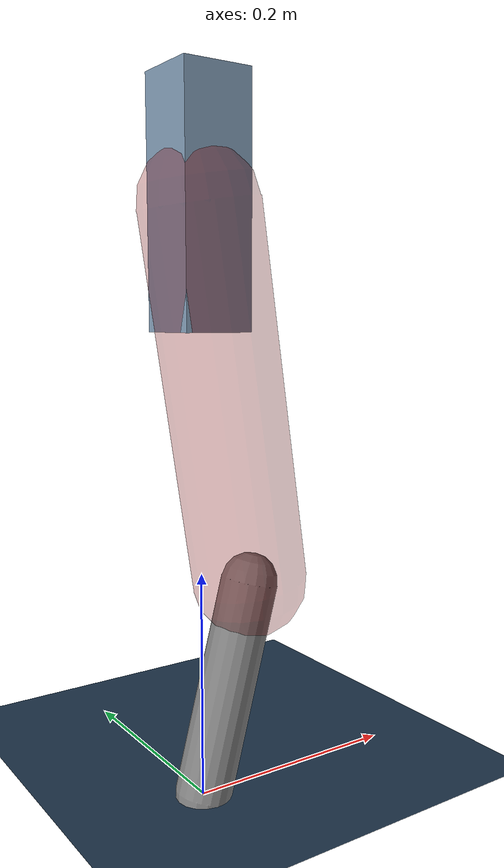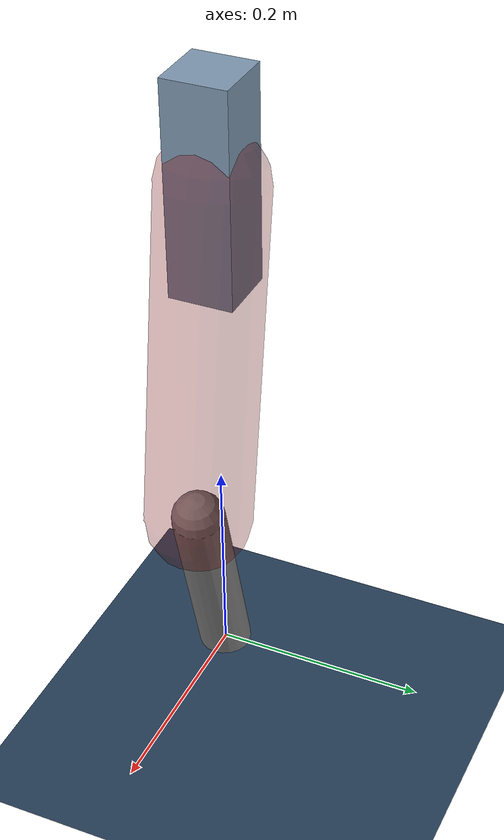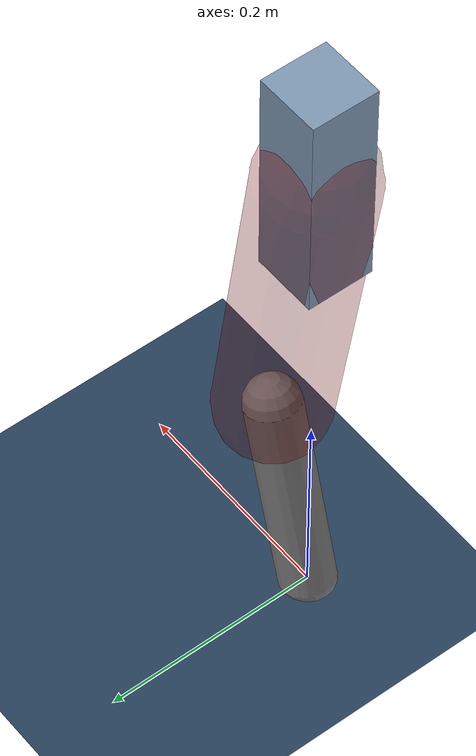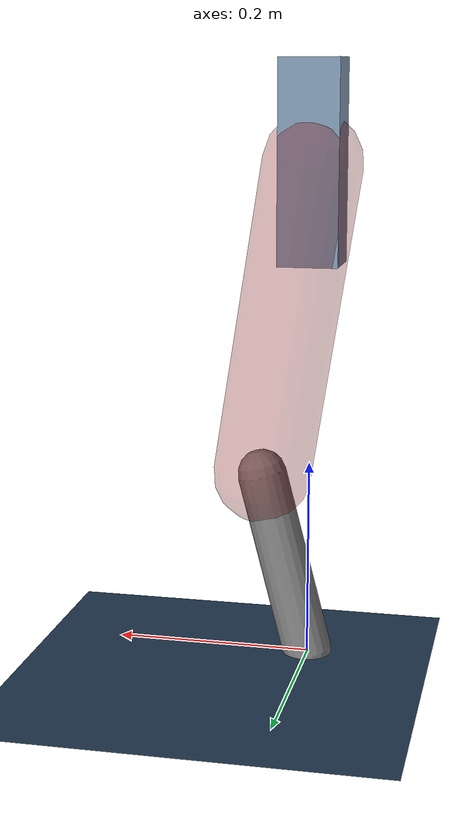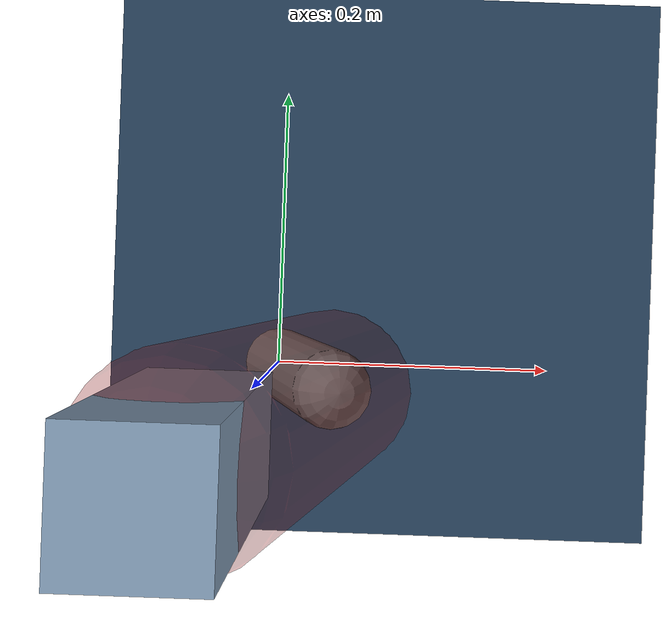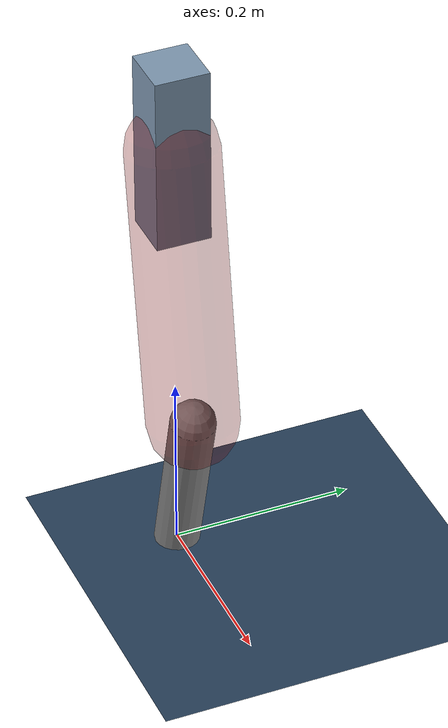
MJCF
<mujoco model="Hopper2D">
	<compiler inertiafromgeom="true" angle="radian" />
	<option timestep="0.001" integrator="implicit" cone="elliptic" solver="Newton" tolerance="1e-10" />

	<default>
		<geom contype="1" conaffinity="1" condim="3" friction="2 0.005 0.0001" solref="0.005 1" />
		<joint limited="true" damping="0.1" />
	</default>

	<asset>
		<texture name="skybox" type="skybox" builtin="gradient" rgb1=".4 .6 .8" rgb2="0 0 0" width="800" height="800" />
		<texture name="grid" type="2d" builtin="checker" rgb1=".1 .2 .3" rgb2=".2 .3 .4" width="300" height="300" mark="edge" markrgb=".2 .3 .4" />
		<material name="ground" texture="grid" texrepeat="1 1" texuniform="true" reflectance="0.1" />
		<material name="leg" rgba="0.5 0.6 0.7 1" />
	</asset>

	<worldbody>

		<geom name="floor" type="plane" size="5 5 0.25" material="ground" />

		<light directional="false" diffuse="0.8 0.8 0.8" specular="0.3 0.3 0.3" pos="0 0 2" dir="0 0 -1" />
		<light mode="targetbodycom" target="base" directional="false" diffuse="0.8 0.8 0.8" specular="0.3 0.3 0.3" pos="0 0 2" dir="0 0 -1" />

		<camera name="fixed" pos="0 -2 1" xyaxes="1 0 0 0 0 1" />
		<camera name="tracking" mode="trackcom" pos="0 -3 1" />

		<body name="root" pos="0 0 0.5023667081155191">
			<joint name="slide_x" type="slide" axis="1 0 0" range="-100 100" />
			<joint name="slide_z" type="slide" axis="0 0 1" range="0 10" />

			<body name="base" pos="0 0 0">
				<geom name="torso" type="box" size="0.03 0.03 0.1" mass="1.855" material="leg" />

				<body name="link1" pos="0 0 0" euler="0 1.4175512115841462 0">
					<joint type="hinge" axis="0 -1 0" pos="0 0 0" name="hinge1" limited="true" range="-3.14 3.14" stiffness="0" damping="0.1" />
					<geom name="thigh" type="capsule" fromto="0 0 0 0.3193542159773918 0 0" size="0.05" rgba="0.5 0 0 0.3" mass="1.0414563831389578" />

					<body name="link2" pos="0.3193542159773918 0 0" euler="0 0.40857512601144635 0">
						<joint type="hinge" axis="0 -1 0" pos="0 0 0" name="hinge2" limited="true" range="-3.14 3.14" stiffness="0" damping="0.1" />
						<geom name="shank" type="capsule" fromto="0 0 0 0.19301249213812732 0 0" size="0.025" mass="0.3950099937105019" />

					</body>
				</body>
			</body>
		</body>
	</worldbody>

	<actuator>
		<motor name="torque1" joint="hinge1" ctrlrange="-64.96125328778112 64.96125328778112" ctrllimited="true" gear="1" />
		<motor name="torque2" joint="hinge2" ctrlrange="-54.7345868549985 54.7345868549985" ctrllimited="true" gear="1" />
	</actuator>
</mujoco>
